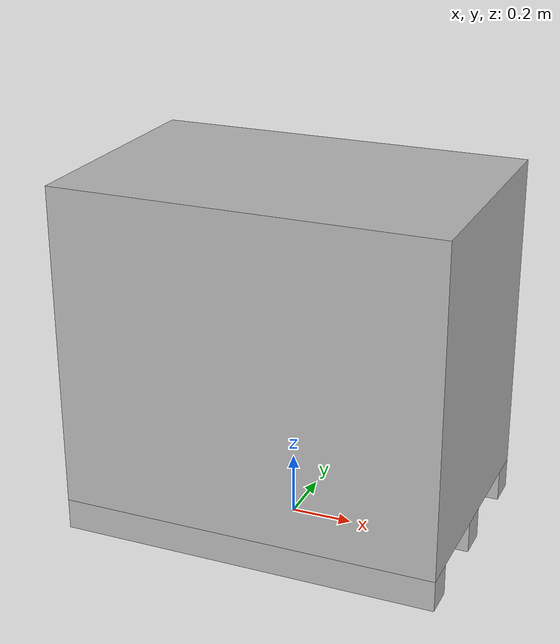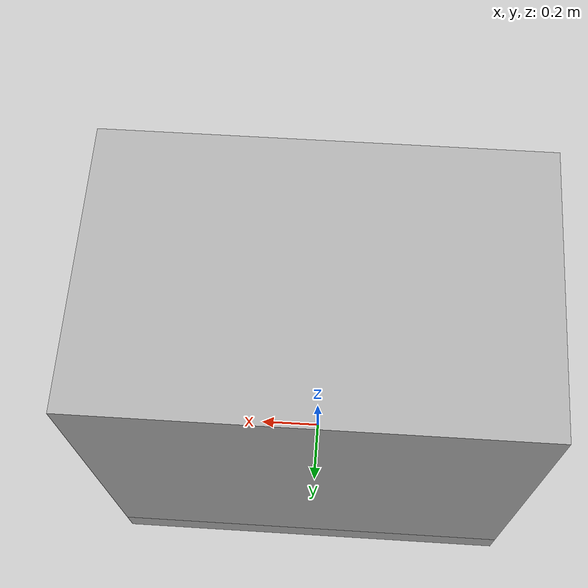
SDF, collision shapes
<?xml version='1.0'?>
<sdf version="1.7">
    <model name="pallet_box_mobile">
        <pose>0 0 0.01 0 0 0</pose>
        <self_collide>false</self_collide>
        <!-- BASE_LINK FRAME -->
        <link name="pallet_base">
            <pose>0 0 0 0 0 0</pose>
            <inertial>
                <pose>0 0 0.4 0 0 0</pose>
                <mass>100</mass>
                <inertia>
                    <ixx>0.1</ixx>
                    <ixy>0</ixy>
                    <ixz>0</ixz>
                    <iyy>0.1</iyy>
                    <iyz>0</iyz>
                    <izz>0.1</izz>
                </inertia>
            </inertial>

            <collision name="load_collision">
                <pose>0 0 0.625 0 0 0</pose>
                <geometry>
                    <box>
                        <size>1.22 0.8 1.04</size>
                    </box>
                </geometry>

                <surface>
                    <friction>
                        <ode>
                            <mu>1.4</mu>
                            <mu2>1.4</mu2>
                        </ode>
                    </friction>
                    <contact>
                        <ode>
                            <kp>100000</kp>
                            <kd>100</kd>
                        </ode>
                    </contact>
                </surface>
            </collision>

            <collision name="pallet_center_collision">
                <pose>0 0 0.055 0 0 0</pose>
                <geometry>
                    <box>
                        <size>1.22 0.1 0.1</size>
                    </box>
                </geometry>
            </collision>
            <collision name="pallet_left_collision">
                <pose>0 -0.35 0.055 0 0 0</pose>
                <geometry>
                    <box>
                        <size>1.22 0.1 0.1</size>
                    </box>
                </geometry>
            </collision>
            <collision name="pallet_right_collision">
                <pose>0 0.35 0.055 0 0 0</pose>
                <geometry>
                    <box>
                        <size>1.22 0.1 0.1</size>
                    </box>
                </geometry>
            </collision>
            <visual name="pallet_visual">
                <pose>0 0 0 0 0 0</pose>
                <geometry>
                    <mesh>
                        <scale>1 1 1</scale>
                        <uri>model://pallet/meshes/pallet.dae</uri>
                    </mesh>
                </geometry>
            </visual>
            <visual name="boxes_visual">
                <pose>-0.053875 0 0 0 0 0</pose>
                <geometry>
                    <mesh>
                        <scale>1 1 1</scale>
                        <uri>model://pallet_box_mobile/meshes/boxes.dae</uri>
                    </mesh>
                </geometry>
            </visual>
        </link>
        <plugin filename="ignition-gazebo-pose-publisher-system" name="ignition::gazebo::systems::PosePublisher">
            <publish_link_pose>true</publish_link_pose>
            <publish_collision_pose>false</publish_collision_pose>
            <publish_visual_pose>false</publish_visual_pose>
            <publish_nested_model_pose>true</publish_nested_model_pose>
            <update_frequency>20</update_frequency>
        </plugin>
        <static>0</static>
    </model>
</sdf>
